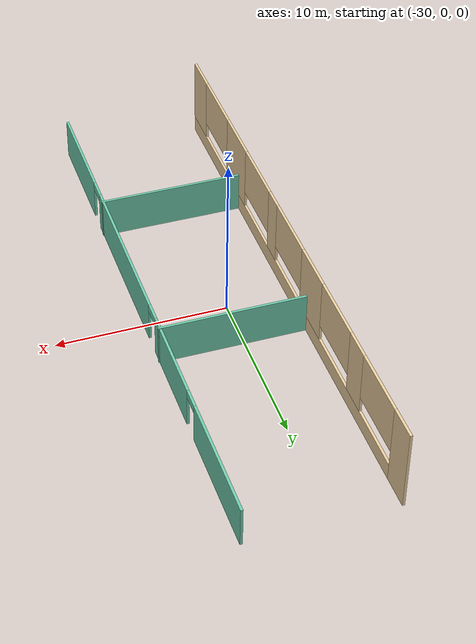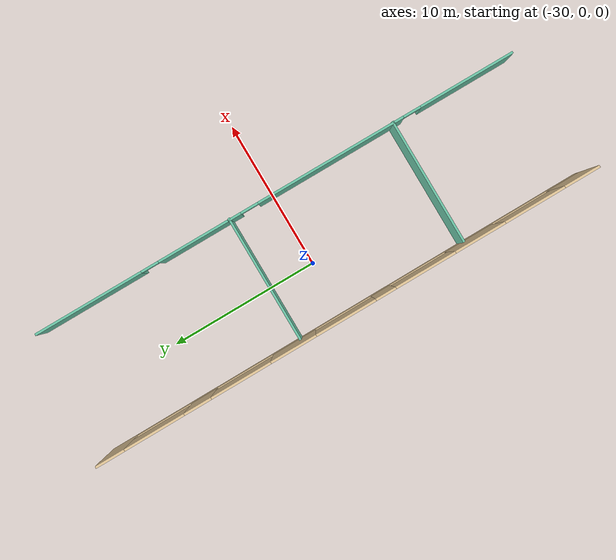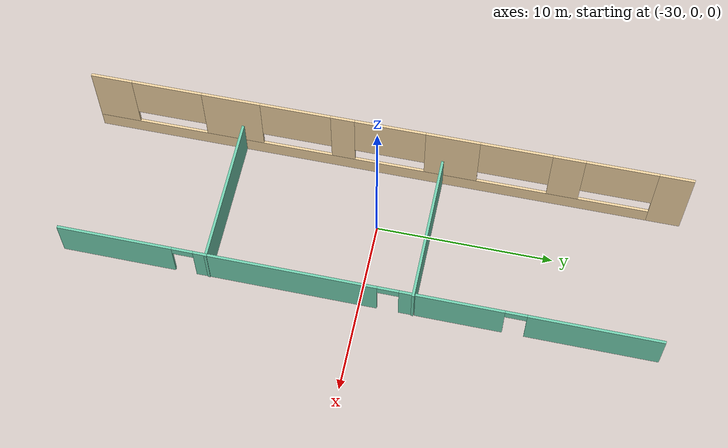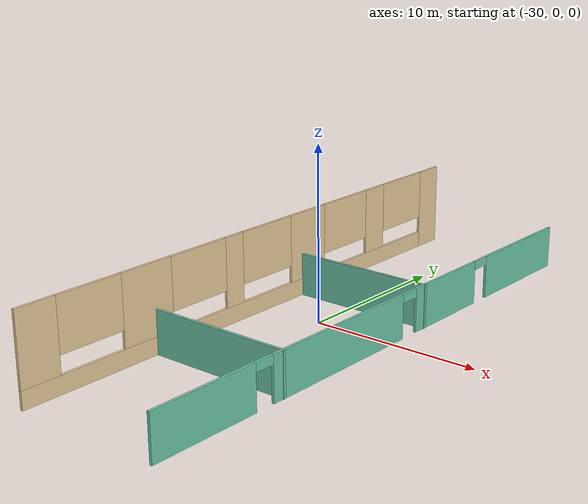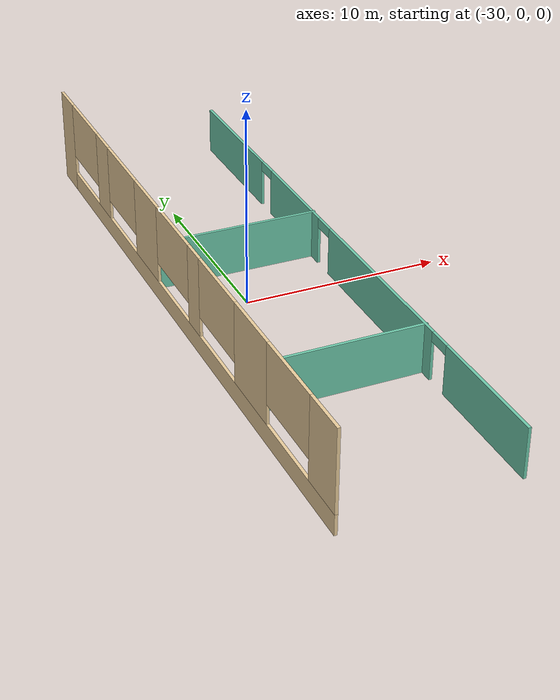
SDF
<sdf version="1.6">
 <model name="myWarehouse">
  <link name="Wall_31">
   <pose>-29.3992 2.99201 0 0 -0 0</pose>
   <visual name="Wall_31_Visual">
    <pose>0 0 1.25 0 -0 0</pose>
    <geometry><box><size>8.69036 0.15 2.5</size></box></geometry>
    <material>
     <script><uri>file://media/materials/scripts/gazebo.material</uri><name>Gazebo/Grey</name></script>
     <ambient>0.435294 0.796078 0.67451 1</ambient>
     <shader type="pixel"/>
     <diffuse>0.7 0.7 0.7 1</diffuse>
     <specular>0.01 0.01 0.01 1</specular>
     <emissive>0 0 0 1</emissive>
    </material>
    <meta><layer>0</layer></meta>
   </visual>
   <collision name="Wall_31_Collision">
    <pose>0 0 1.25 0 -0 0</pose>
    <geometry><box><size>8.69036 0.15 2.5</size></box></geometry>
    <surface>
     <friction>
      <ode><mu>1</mu><mu2>1</mu2><fdir1>0 0 0</fdir1><slip1>0</slip1><slip2>0</slip2></ode>
      <torsional>
       <coefficient>1</coefficient>
       <patch_radius>0</patch_radius>
       <surface_radius>0</surface_radius>
       <use_patch_radius>1</use_patch_radius>
       <ode><slip>0</slip></ode>
      </torsional>
     </friction>
     <bounce><restitution_coefficient>0</restitution_coefficient><threshold>1e+06</threshold></bounce>
     <contact>
      <collide_without_contact>0</collide_without_contact>
      <collide_without_contact_bitmask>1</collide_without_contact_bitmask>
      <collide_bitmask>1</collide_bitmask>
      <ode>
       <soft_cfm>0</soft_cfm>
       <soft_erp>0.2</soft_erp>
       <kp>1e+13</kp>
       <kd>1</kd>
       <max_vel>0.01</max_vel>
       <min_depth>0</min_depth>
      </ode>
      <bullet>
       <split_impulse>1</split_impulse>
       <split_impulse_penetration_threshold>-0.01</split_impulse_penetration_threshold>
       <soft_cfm>0</soft_cfm>
       <soft_erp>0.2</soft_erp>
       <kp>1e+13</kp>
       <kd>1</kd>
      </bullet>
     </contact>
    </surface>
   </collision>
  </link>
  <link name="Wall_33">
   <pose>-33.6748 -0.181302 0 0 0 -1.56757</pose>
   <visual name="Wall_33_Visual_0">
    <pose>-15.936 0 2.5 0 -0 0</pose>
    <geometry><box><size>1.91581 0.15 5</size></box></geometry>
    <material>
     <script><uri>file://media/materials/scripts/gazebo.material</uri><name>Gazebo/Grey</name></script>
     <ambient>0.921569 0.807843 0.615686 1</ambient>
     <shader type="pixel"/>
     <diffuse>0.7 0.7 0.7 1</diffuse>
     <specular>0.01 0.01 0.01 1</specular>
     <emissive>0 0 0 1</emissive>
    </material>
    <meta><layer>0</layer></meta>
   </visual>
   <visual name="Wall_33_Visual_1">
    <pose>0.957904 0 0.5 0 -0 0</pose>
    <geometry><box><size>31.872 0.15 1</size></box></geometry>
    <material>
     <script><uri>file://media/materials/scripts/gazebo.material</uri><name>Gazebo/Grey</name></script>
     <ambient>0.921569 0.807843 0.615686 1</ambient>
     <shader type="pixel"/>
     <diffuse>0.7 0.7 0.7 1</diffuse>
     <specular>0.01 0.01 0.01 1</specular>
     <emissive>0 0 0 1</emissive>
    </material>
    <meta><layer>0</layer></meta>
   </visual>
   <visual name="Wall_33_Visual_2">
    <pose>-10.0753 0 3 0 -0 0</pose>
    <geometry><box><size>1.80567 0.15 4</size></box></geometry>
    <material>
     <script><uri>file://media/materials/scripts/gazebo.material</uri><name>Gazebo/Grey</name></script>
     <ambient>0.921569 0.807843 0.615686 1</ambient>
     <shader type="pixel"/>
     <diffuse>0.7 0.7 0.7 1</diffuse>
     <specular>0.01 0.01 0.01 1</specular>
     <emissive>0 0 0 1</emissive>
    </material>
    <meta><layer>0</layer></meta>
   </visual>
   <visual name="Wall_33_Visual_3">
    <pose>-3.654 0 3 0 -0 0</pose>
    <geometry><box><size>3.03683 0.15 4</size></box></geometry>
    <material>
     <script><uri>file://media/materials/scripts/gazebo.material</uri><name>Gazebo/Grey</name></script>
     <ambient>0.921569 0.807843 0.615686 1</ambient>
     <shader type="pixel"/>
     <diffuse>0.7 0.7 0.7 1</diffuse>
     <specular>0.01 0.01 0.01 1</specular>
     <emissive>0 0 0 1</emissive>
    </material>
    <meta><layer>0</layer></meta>
   </visual>
   <visual name="Wall_33_Visual_4">
    <pose>2.5391 0 3 0 -0 0</pose>
    <geometry><box><size>1.34936 0.15 4</size></box></geometry>
    <material>
     <script><uri>file://media/materials/scripts/gazebo.material</uri><name>Gazebo/Grey</name></script>
     <ambient>0.921569 0.807843 0.615686 1</ambient>
     <shader type="pixel"/>
     <diffuse>0.7 0.7 0.7 1</diffuse>
     <specular>0.01 0.01 0.01 1</specular>
     <emissive>0 0 0 1</emissive>
    </material>
    <meta><layer>0</layer></meta>
   </visual>
   <visual name="Wall_33_Visual_5">
    <pose>8.88554 0 3 0 -0 0</pose>
    <geometry><box><size>3.34353 0.15 4</size></box></geometry>
    <material>
     <script><uri>file://media/materials/scripts/gazebo.material</uri><name>Gazebo/Grey</name></script>
     <ambient>0.921569 0.807843 0.615686 1</ambient>
     <shader type="pixel"/>
     <diffuse>0.7 0.7 0.7 1</diffuse>
     <specular>0.01 0.01 0.01 1</specular>
     <emissive>0 0 0 1</emissive>
    </material>
    <meta><layer>0</layer></meta>
   </visual>
   <visual name="Wall_33_Visual_6">
    <pose>15.7256 0 3 0 -0 0</pose>
    <geometry><box><size>2.33659 0.15 4</size></box></geometry>
    <material>
     <script><uri>file://media/materials/scripts/gazebo.material</uri><name>Gazebo/Grey</name></script>
     <ambient>0.921569 0.807843 0.615686 1</ambient>
     <shader type="pixel"/>
     <diffuse>0.7 0.7 0.7 1</diffuse>
     <specular>0.01 0.01 0.01 1</specular>
     <emissive>0 0 0 1</emissive>
    </material>
    <meta><layer>0</layer></meta>
   </visual>
   <visual name="Wall_33_Visual_7">
    <pose>-12.9781 0 3.5 0 -0 0</pose>
    <geometry><box><size>4 0.15 3</size></box></geometry>
    <material>
     <script><uri>file://media/materials/scripts/gazebo.material</uri><name>Gazebo/Grey</name></script>
     <ambient>0.921569 0.807843 0.615686 1</ambient>
     <shader type="pixel"/>
     <diffuse>0.7 0.7 0.7 1</diffuse>
     <specular>0.01 0.01 0.01 1</specular>
     <emissive>0 0 0 1</emissive>
    </material>
    <meta><layer>0</layer></meta>
   </visual>
   <visual name="Wall_33_Visual_9">
    <pose>-0.135581 0 3.5 0 -0 0</pose>
    <geometry><box><size>4 0.15 3</size></box></geometry>
    <material>
     <script><uri>file://media/materials/scripts/gazebo.material</uri><name>Gazebo/Grey</name></script>
     <ambient>0.921569 0.807843 0.615686 1</ambient>
     <shader type="pixel"/>
     <diffuse>0.7 0.7 0.7 1</diffuse>
     <specular>0.01 0.01 0.01 1</specular>
     <emissive>0 0 0 1</emissive>
    </material>
    <meta><layer>0</layer></meta>
   </visual>
   <visual name="Wall_33_Visual_8">
    <pose>-7.17242 0 3.5 0 -0 0</pose>
    <geometry><box><size>4 0.15 3</size></box></geometry>
    <material>
     <script><uri>file://media/materials/scripts/gazebo.material</uri><name>Gazebo/Grey</name></script>
     <ambient>0.921569 0.807843 0.615686 1</ambient>
     <shader type="pixel"/>
     <diffuse>0.7 0.7 0.7 1</diffuse>
     <specular>0.01 0.01 0.01 1</specular>
     <emissive>0 0 0 1</emissive>
    </material>
    <meta><layer>0</layer></meta>
   </visual>
   <visual name="Wall_33_Visual_10">
    <pose>5.21378 0 3.5 0 -0 0</pose>
    <geometry><box><size>4 0.15 3</size></box></geometry>
    <material>
     <script><uri>file://media/materials/scripts/gazebo.material</uri><name>Gazebo/Grey</name></script>
     <ambient>0.921569 0.807843 0.615686 1</ambient>
     <shader type="pixel"/>
     <diffuse>0.7 0.7 0.7 1</diffuse>
     <specular>0.01 0.01 0.01 1</specular>
     <emissive>0 0 0 1</emissive>
    </material>
    <meta><layer>0</layer></meta>
   </visual>
   <visual name="Wall_33_Visual_11">
    <pose>12.5573 0 3.5 0 -0 0</pose>
    <geometry><box><size>4 0.15 3</size></box></geometry>
    <material>
     <script><uri>file://media/materials/scripts/gazebo.material</uri><name>Gazebo/Grey</name></script>
     <ambient>0.921569 0.807843 0.615686 1</ambient>
     <shader type="pixel"/>
     <diffuse>0.7 0.7 0.7 1</diffuse>
     <specular>0.01 0.01 0.01 1</specular>
     <emissive>0 0 0 1</emissive>
    </material>
    <meta><layer>0</layer></meta>
   </visual>
   <collision name="Wall_33_Collision_8">
    <pose>-7.17242 0 3.5 0 -0 0</pose>
    <geometry><box><size>4 0.15 3</size></box></geometry>
    <surface>
     <friction>
      <ode><mu>1</mu><mu2>1</mu2><fdir1>0 0 0</fdir1><slip1>0</slip1><slip2>0</slip2></ode>
      <torsional>
       <coefficient>1</coefficient>
       <patch_radius>0</patch_radius>
       <surface_radius>0</surface_radius>
       <use_patch_radius>1</use_patch_radius>
       <ode><slip>0</slip></ode>
      </torsional>
     </friction>
     <bounce><restitution_coefficient>0</restitution_coefficient><threshold>1e+06</threshold></bounce>
     <contact>
      <collide_without_contact>0</collide_without_contact>
      <collide_without_contact_bitmask>1</collide_without_contact_bitmask>
      <collide_bitmask>1</collide_bitmask>
      <ode>
       <soft_cfm>0</soft_cfm>
       <soft_erp>0.2</soft_erp>
       <kp>1e+13</kp>
       <kd>1</kd>
       <max_vel>0.01</max_vel>
       <min_depth>0</min_depth>
      </ode>
      <bullet>
       <split_impulse>1</split_impulse>
       <split_impulse_penetration_threshold>-0.01</split_impulse_penetration_threshold>
       <soft_cfm>0</soft_cfm>
       <soft_erp>0.2</soft_erp>
       <kp>1e+13</kp>
       <kd>1</kd>
      </bullet>
     </contact>
    </surface>
   </collision>
   <collision name="Wall_33_Collision_0">
    <pose>-15.936 0 2.5 0 -0 0</pose>
    <geometry><box><size>1.91581 0.15 5</size></box></geometry>
    <surface>
     <friction>
      <ode><mu>1</mu><mu2>1</mu2><fdir1>0 0 0</fdir1><slip1>0</slip1><slip2>0</slip2></ode>
      <torsional>
       <coefficient>1</coefficient>
       <patch_radius>0</patch_radius>
       <surface_radius>0</surface_radius>
       <use_patch_radius>1</use_patch_radius>
       <ode><slip>0</slip></ode>
      </torsional>
     </friction>
     <bounce><restitution_coefficient>0</restitution_coefficient><threshold>1e+06</threshold></bounce>
     <contact>
      <collide_without_contact>0</collide_without_contact>
      <collide_without_contact_bitmask>1</collide_without_contact_bitmask>
      <collide_bitmask>1</collide_bitmask>
      <ode>
       <soft_cfm>0</soft_cfm>
       <soft_erp>0.2</soft_erp>
       <kp>1e+13</kp>
       <kd>1</kd>
       <max_vel>0.01</max_vel>
       <min_depth>0</min_depth>
      </ode>
      <bullet>
       <split_impulse>1</split_impulse>
       <split_impulse_penetration_threshold>-0.01</split_impulse_penetration_threshold>
       <soft_cfm>0</soft_cfm>
       <soft_erp>0.2</soft_erp>
       <kp>1e+13</kp>
       <kd>1</kd>
      </bullet>
     </contact>
    </surface>
   </collision>
   <collision name="Wall_33_Collision_1">
    <pose>0.957904 0 0.5 0 -0 0</pose>
    <geometry><box><size>31.872 0.15 1</size></box></geometry>
    <surface>
     <friction>
      <ode><mu>1</mu><mu2>1</mu2><fdir1>0 0 0</fdir1><slip1>0</slip1><slip2>0</slip2></ode>
      <torsional>
       <coefficient>1</coefficient>
       <patch_radius>0</patch_radius>
       <surface_radius>0</surface_radius>
       <use_patch_radius>1</use_patch_radius>
       <ode><slip>0</slip></ode>
      </torsional>
     </friction>
     <bounce><restitution_coefficient>0</restitution_coefficient><threshold>1e+06</threshold></bounce>
     <contact>
      <collide_without_contact>0</collide_without_contact>
      <collide_without_contact_bitmask>1</collide_without_contact_bitmask>
      <collide_bitmask>1</collide_bitmask>
      <ode>
       <soft_cfm>0</soft_cfm>
       <soft_erp>0.2</soft_erp>
       <kp>1e+13</kp>
       <kd>1</kd>
       <max_vel>0.01</max_vel>
       <min_depth>0</min_depth>
      </ode>
      <bullet>
       <split_impulse>1</split_impulse>
       <split_impulse_penetration_threshold>-0.01</split_impulse_penetration_threshold>
       <soft_cfm>0</soft_cfm>
       <soft_erp>0.2</soft_erp>
       <kp>1e+13</kp>
       <kd>1</kd>
      </bullet>
     </contact>
    </surface>
   </collision>
   <collision name="Wall_33_Collision_2">
    <pose>-10.0753 0 3 0 -0 0</pose>
    <geometry><box><size>1.80567 0.15 4</size></box></geometry>
    <surface>
     <friction>
      <ode><mu>1</mu><mu2>1</mu2><fdir1>0 0 0</fdir1><slip1>0</slip1><slip2>0</slip2></ode>
      <torsional>
       <coefficient>1</coefficient>
       <patch_radius>0</patch_radius>
       <surface_radius>0</surface_radius>
       <use_patch_radius>1</use_patch_radius>
       <ode><slip>0</slip></ode>
      </torsional>
     </friction>
     <bounce><restitution_coefficient>0</restitution_coefficient><threshold>1e+06</threshold></bounce>
     <contact>
      <collide_without_contact>0</collide_without_contact>
      <collide_without_contact_bitmask>1</collide_without_contact_bitmask>
      <collide_bitmask>1</collide_bitmask>
      <ode>
       <soft_cfm>0</soft_cfm>
       <soft_erp>0.2</soft_erp>
       <kp>1e+13</kp>
       <kd>1</kd>
       <max_vel>0.01</max_vel>
       <min_depth>0</min_depth>
      </ode>
      <bullet>
       <split_impulse>1</split_impulse>
       <split_impulse_penetration_threshold>-0.01</split_impulse_penetration_threshold>
       <soft_cfm>0</soft_cfm>
       <soft_erp>0.2</soft_erp>
       <kp>1e+13</kp>
       <kd>1</kd>
      </bullet>
     </contact>
    </surface>
   </collision>
   <collision name="Wall_33_Collision_4">
    <pose>2.5391 0 3 0 -0 0</pose>
    <geometry><box><size>1.34936 0.15 4</size></box></geometry>
    <surface>
     <friction>
      <ode><mu>1</mu><mu2>1</mu2><fdir1>0 0 0</fdir1><slip1>0</slip1><slip2>0</slip2></ode>
      <torsional>
       <coefficient>1</coefficient>
       <patch_radius>0</patch_radius>
       <surface_radius>0</surface_radius>
       <use_patch_radius>1</use_patch_radius>
       <ode><slip>0</slip></ode>
      </torsional>
     </friction>
     <bounce><restitution_coefficient>0</restitution_coefficient><threshold>1e+06</threshold></bounce>
     <contact>
      <collide_without_contact>0</collide_without_contact>
      <collide_without_contact_bitmask>1</collide_without_contact_bitmask>
      <collide_bitmask>1</collide_bitmask>
      <ode>
       <soft_cfm>0</soft_cfm>
       <soft_erp>0.2</soft_erp>
       <kp>1e+13</kp>
       <kd>1</kd>
       <max_vel>0.01</max_vel>
       <min_depth>0</min_depth>
      </ode>
      <bullet>
       <split_impulse>1</split_impulse>
       <split_impulse_penetration_threshold>-0.01</split_impulse_penetration_threshold>
       <soft_cfm>0</soft_cfm>
       <soft_erp>0.2</soft_erp>
       <kp>1e+13</kp>
       <kd>1</kd>
      </bullet>
     </contact>
    </surface>
   </collision>
   <collision name="Wall_33_Collision_3">
    <pose>-3.654 0 3 0 -0 0</pose>
    <geometry><box><size>3.03683 0.15 4</size></box></geometry>
    <surface>
     <friction>
      <ode><mu>1</mu><mu2>1</mu2><fdir1>0 0 0</fdir1><slip1>0</slip1><slip2>0</slip2></ode>
      <torsional>
       <coefficient>1</coefficient>
       <patch_radius>0</patch_radius>
       <surface_radius>0</surface_radius>
       <use_patch_radius>1</use_patch_radius>
       <ode><slip>0</slip></ode>
      </torsional>
     </friction>
     <bounce><restitution_coefficient>0</restitution_coefficient><threshold>1e+06</threshold></bounce>
     <contact>
      <collide_without_contact>0</collide_without_contact>
      <collide_without_contact_bitmask>1</collide_without_contact_bitmask>
      <collide_bitmask>1</collide_bitmask>
      <ode>
       <soft_cfm>0</soft_cfm>
       <soft_erp>0.2</soft_erp>
       <kp>1e+13</kp>
       <kd>1</kd>
       <max_vel>0.01</max_vel>
       <min_depth>0</min_depth>
      </ode>
      <bullet>
       <split_impulse>1</split_impulse>
       <split_impulse_penetration_threshold>-0.01</split_impulse_penetration_threshold>
       <soft_cfm>0</soft_cfm>
       <soft_erp>0.2</soft_erp>
       <kp>1e+13</kp>
       <kd>1</kd>
      </bullet>
     </contact>
    </surface>
   </collision>
   <collision name="Wall_33_Collision_5">
    <pose>8.88554 0 3 0 -0 0</pose>
    <geometry><box><size>3.34353 0.15 4</size></box></geometry>
    <surface>
     <friction>
      <ode><mu>1</mu><mu2>1</mu2><fdir1>0 0 0</fdir1><slip1>0</slip1><slip2>0</slip2></ode>
      <torsional>
       <coefficient>1</coefficient>
       <patch_radius>0</patch_radius>
       <surface_radius>0</surface_radius>
       <use_patch_radius>1</use_patch_radius>
       <ode><slip>0</slip></ode>
      </torsional>
     </friction>
     <bounce><restitution_coefficient>0</restitution_coefficient><threshold>1e+06</threshold></bounce>
     <contact>
      <collide_without_contact>0</collide_without_contact>
      <collide_without_contact_bitmask>1</collide_without_contact_bitmask>
      <collide_bitmask>1</collide_bitmask>
      <ode>
       <soft_cfm>0</soft_cfm>
       <soft_erp>0.2</soft_erp>
       <kp>1e+13</kp>
       <kd>1</kd>
       <max_vel>0.01</max_vel>
       <min_depth>0</min_depth>
      </ode>
      <bullet>
       <split_impulse>1</split_impulse>
       <split_impulse_penetration_threshold>-0.01</split_impulse_penetration_threshold>
       <soft_cfm>0</soft_cfm>
       <soft_erp>0.2</soft_erp>
       <kp>1e+13</kp>
       <kd>1</kd>
      </bullet>
     </contact>
    </surface>
   </collision>
   <collision name="Wall_33_Collision_6">
    <pose>15.7256 0 3 0 -0 0</pose>
    <geometry><box><size>2.33659 0.15 4</size></box></geometry>
    <surface>
     <friction>
      <ode><mu>1</mu><mu2>1</mu2><fdir1>0 0 0</fdir1><slip1>0</slip1><slip2>0</slip2></ode>
      <torsional>
       <coefficient>1</coefficient>
       <patch_radius>0</patch_radius>
       <surface_radius>0</surface_radius>
       <use_patch_radius>1</use_patch_radius>
       <ode><slip>0</slip></ode>
      </torsional>
     </friction>
     <bounce><restitution_coefficient>0</restitution_coefficient><threshold>1e+06</threshold></bounce>
     <contact>
      <collide_without_contact>0</collide_without_contact>
      <collide_without_contact_bitmask>1</collide_without_contact_bitmask>
      <collide_bitmask>1</collide_bitmask>
      <ode>
       <soft_cfm>0</soft_cfm>
       <soft_erp>0.2</soft_erp>
       <kp>1e+13</kp>
       <kd>1</kd>
       <max_vel>0.01</max_vel>
       <min_depth>0</min_depth>
      </ode>
      <bullet>
       <split_impulse>1</split_impulse>
       <split_impulse_penetration_threshold>-0.01</split_impulse_penetration_threshold>
       <soft_cfm>0</soft_cfm>
       <soft_erp>0.2</soft_erp>
       <kp>1e+13</kp>
       <kd>1</kd>
      </bullet>
     </contact>
    </surface>
   </collision>
   <collision name="Wall_33_Collision_7">
    <pose>-12.9781 0 3.5 0 -0 0</pose>
    <geometry><box><size>4 0.15 3</size></box></geometry>
    <surface>
     <friction>
      <ode><mu>1</mu><mu2>1</mu2><fdir1>0 0 0</fdir1><slip1>0</slip1><slip2>0</slip2></ode>
      <torsional>
       <coefficient>1</coefficient>
       <patch_radius>0</patch_radius>
       <surface_radius>0</surface_radius>
       <use_patch_radius>1</use_patch_radius>
       <ode><slip>0</slip></ode>
      </torsional>
     </friction>
     <bounce><restitution_coefficient>0</restitution_coefficient><threshold>1e+06</threshold></bounce>
     <contact>
      <collide_without_contact>0</collide_without_contact>
      <collide_without_contact_bitmask>1</collide_without_contact_bitmask>
      <collide_bitmask>1</collide_bitmask>
      <ode>
       <soft_cfm>0</soft_cfm>
       <soft_erp>0.2</soft_erp>
       <kp>1e+13</kp>
       <kd>1</kd>
       <max_vel>0.01</max_vel>
       <min_depth>0</min_depth>
      </ode>
      <bullet>
       <split_impulse>1</split_impulse>
       <split_impulse_penetration_threshold>-0.01</split_impulse_penetration_threshold>
       <soft_cfm>0</soft_cfm>
       <soft_erp>0.2</soft_erp>
       <kp>1e+13</kp>
       <kd>1</kd>
      </bullet>
     </contact>
    </surface>
   </collision>
   <collision name="Wall_33_Collision_10">
    <pose>5.21378 0 3.5 0 -0 0</pose>
    <geometry><box><size>4 0.15 3</size></box></geometry>
    <surface>
     <friction>
      <ode><mu>1</mu><mu2>1</mu2><fdir1>0 0 0</fdir1><slip1>0</slip1><slip2>0</slip2></ode>
      <torsional>
       <coefficient>1</coefficient>
       <patch_radius>0</patch_radius>
       <surface_radius>0</surface_radius>
       <use_patch_radius>1</use_patch_radius>
       <ode><slip>0</slip></ode>
      </torsional>
     </friction>
     <bounce><restitution_coefficient>0</restitution_coefficient><threshold>1e+06</threshold></bounce>
     <contact>
      <collide_without_contact>0</collide_without_contact>
      <collide_without_contact_bitmask>1</collide_without_contact_bitmask>
      <collide_bitmask>1</collide_bitmask>
      <ode>
       <soft_cfm>0</soft_cfm>
       <soft_erp>0.2</soft_erp>
       <kp>1e+13</kp>
       <kd>1</kd>
       <max_vel>0.01</max_vel>
       <min_depth>0</min_depth>
      </ode>
      <bullet>
       <split_impulse>1</split_impulse>
       <split_impulse_penetration_threshold>-0.01</split_impulse_penetration_threshold>
       <soft_cfm>0</soft_cfm>
       <soft_erp>0.2</soft_erp>
       <kp>1e+13</kp>
       <kd>1</kd>
      </bullet>
     </contact>
    </surface>
   </collision>
   <collision name="Wall_33_Collision_9">
    <pose>-0.135581 0 3.5 0 -0 0</pose>
    <geometry><box><size>4 0.15 3</size></box></geometry>
    <surface>
     <friction>
      <ode><mu>1</mu><mu2>1</mu2><fdir1>0 0 0</fdir1><slip1>0</slip1><slip2>0</slip2></ode>
      <torsional>
       <coefficient>1</coefficient>
       <patch_radius>0</patch_radius>
       <surface_radius>0</surface_radius>
       <use_patch_radius>1</use_patch_radius>
       <ode><slip>0</slip></ode>
      </torsional>
     </friction>
     <bounce><restitution_coefficient>0</restitution_coefficient><threshold>1e+06</threshold></bounce>
     <contact>
      <collide_without_contact>0</collide_without_contact>
      <collide_without_contact_bitmask>1</collide_without_contact_bitmask>
      <collide_bitmask>1</collide_bitmask>
      <ode>
       <soft_cfm>0</soft_cfm>
       <soft_erp>0.2</soft_erp>
       <kp>1e+13</kp>
       <kd>1</kd>
       <max_vel>0.01</max_vel>
       <min_depth>0</min_depth>
      </ode>
      <bullet>
       <split_impulse>1</split_impulse>
       <split_impulse_penetration_threshold>-0.01</split_impulse_penetration_threshold>
       <soft_cfm>0</soft_cfm>
       <soft_erp>0.2</soft_erp>
       <kp>1e+13</kp>
       <kd>1</kd>
      </bullet>
     </contact>
    </surface>
   </collision>
   <collision name="Wall_33_Collision_11">
    <pose>12.5573 0 3.5 0 -0 0</pose>
    <geometry><box><size>4 0.15 3</size></box></geometry>
    <surface>
     <friction>
      <ode><mu>1</mu><mu2>1</mu2><fdir1>0 0 0</fdir1><slip1>0</slip1><slip2>0</slip2></ode>
      <torsional>
       <coefficient>1</coefficient>
       <patch_radius>0</patch_radius>
       <surface_radius>0</surface_radius>
       <use_patch_radius>1</use_patch_radius>
       <ode><slip>0</slip></ode>
      </torsional>
     </friction>
     <bounce><restitution_coefficient>0</restitution_coefficient><threshold>1e+06</threshold></bounce>
     <contact>
      <collide_without_contact>0</collide_without_contact>
      <collide_without_contact_bitmask>1</collide_without_contact_bitmask>
      <collide_bitmask>1</collide_bitmask>
      <ode>
       <soft_cfm>0</soft_cfm>
       <soft_erp>0.2</soft_erp>
       <kp>1e+13</kp>
       <kd>1</kd>
       <max_vel>0.01</max_vel>
       <min_depth>0</min_depth>
      </ode>
      <bullet>
       <split_impulse>1</split_impulse>
       <split_impulse_penetration_threshold>-0.01</split_impulse_penetration_threshold>
       <soft_cfm>0</soft_cfm>
       <soft_erp>0.2</soft_erp>
       <kp>1e+13</kp>
       <kd>1</kd>
      </bullet>
     </contact>
    </surface>
   </collision>
  </link>
  <link name="Wall_39">
   <pose>-25.1766 -6.93299 0 0 0 -1.5708</pose>
   <visual name="Wall_39_Visual_0">
    <pose>-9.56706 0 1.25 0 -0 0</pose>
    <geometry><box><size>0.865872 0.15 2.5</size></box></geometry>
    <material>
     <script><uri>file://media/materials/scripts/gazebo.material</uri><name>Gazebo/Grey</name></script>
     <ambient>0.435294 0.796078 0.67451 1</ambient>
     <shader type="pixel"/>
     <diffuse>0.7 0.7 0.7 1</diffuse>
     <specular>0.01 0.01 0.01 1</specular>
     <emissive>0 0 0 1</emissive>
    </material>
    <meta><layer>0</layer></meta>
   </visual>
   <visual name="Wall_39_Visual_1">
    <pose>-2.81446 0 1.25 0 -0 0</pose>
    <geometry><box><size>10.2393 0.15 2.5</size></box></geometry>
    <material>
     <script><uri>file://media/materials/scripts/gazebo.material</uri><name>Gazebo/Grey</name></script>
     <ambient>0.435294 0.796078 0.67451 1</ambient>
     <shader type="pixel"/>
     <diffuse>0.7 0.7 0.7 1</diffuse>
     <specular>0.01 0.01 0.01 1</specular>
     <emissive>0 0 0 1</emissive>
    </material>
    <meta><layer>0</layer></meta>
   </visual>
   <visual name="Wall_39_Visual_2">
    <pose>6.7526 0 1.25 0 -0 0</pose>
    <geometry><box><size>6.49479 0.15 2.5</size></box></geometry>
    <material>
     <script><uri>file://media/materials/scripts/gazebo.material</uri><name>Gazebo/Grey</name></script>
     <ambient>0.435294 0.796078 0.67451 1</ambient>
     <shader type="pixel"/>
     <diffuse>0.7 0.7 0.7 1</diffuse>
     <specular>0.01 0.01 0.01 1</specular>
     <emissive>0 0 0 1</emissive>
    </material>
    <meta><layer>0</layer></meta>
   </visual>
   <visual name="Wall_39_Visual_3">
    <pose>-8.53413 0 2.25 0 -0 0</pose>
    <geometry><box><size>1.2 0.15 0.5</size></box></geometry>
    <material>
     <script><uri>file://media/materials/scripts/gazebo.material</uri><name>Gazebo/Grey</name></script>
     <ambient>0.435294 0.796078 0.67451 1</ambient>
     <shader type="pixel"/>
     <diffuse>0.7 0.7 0.7 1</diffuse>
     <specular>0.01 0.01 0.01 1</specular>
     <emissive>0 0 0 1</emissive>
    </material>
    <meta><layer>0</layer></meta>
   </visual>
   <visual name="Wall_39_Visual_4">
    <pose>2.90521 0 2.25 0 -0 0</pose>
    <geometry><box><size>1.2 0.15 0.5</size></box></geometry>
    <material>
     <script><uri>file://media/materials/scripts/gazebo.material</uri><name>Gazebo/Grey</name></script>
     <ambient>0.435294 0.796078 0.67451 1</ambient>
     <shader type="pixel"/>
     <diffuse>0.7 0.7 0.7 1</diffuse>
     <specular>0.01 0.01 0.01 1</specular>
     <emissive>0 0 0 1</emissive>
    </material>
    <meta><layer>0</layer></meta>
   </visual>
   <collision name="Wall_39_Collision_0">
    <pose>-9.56706 0 1.25 0 -0 0</pose>
    <geometry><box><size>0.865872 0.15 2.5</size></box></geometry>
    <surface>
     <friction>
      <ode><mu>1</mu><mu2>1</mu2><fdir1>0 0 0</fdir1><slip1>0</slip1><slip2>0</slip2></ode>
      <torsional>
       <coefficient>1</coefficient>
       <patch_radius>0</patch_radius>
       <surface_radius>0</surface_radius>
       <use_patch_radius>1</use_patch_radius>
       <ode><slip>0</slip></ode>
      </torsional>
     </friction>
     <bounce><restitution_coefficient>0</restitution_coefficient><threshold>1e+06</threshold></bounce>
     <contact>
      <collide_without_contact>0</collide_without_contact>
      <collide_without_contact_bitmask>1</collide_without_contact_bitmask>
      <collide_bitmask>1</collide_bitmask>
      <ode>
       <soft_cfm>0</soft_cfm>
       <soft_erp>0.2</soft_erp>
       <kp>1e+13</kp>
       <kd>1</kd>
       <max_vel>0.01</max_vel>
       <min_depth>0</min_depth>
      </ode>
      <bullet>
       <split_impulse>1</split_impulse>
       <split_impulse_penetration_threshold>-0.01</split_impulse_penetration_threshold>
       <soft_cfm>0</soft_cfm>
       <soft_erp>0.2</soft_erp>
       <kp>1e+13</kp>
       <kd>1</kd>
      </bullet>
     </contact>
    </surface>
   </collision>
   <collision name="Wall_39_Collision_1">
    <pose>-2.81446 0 1.25 0 -0 0</pose>
    <geometry><box><size>10.2393 0.15 2.5</size></box></geometry>
    <surface>
     <friction>
      <ode><mu>1</mu><mu2>1</mu2><fdir1>0 0 0</fdir1><slip1>0</slip1><slip2>0</slip2></ode>
      <torsional>
       <coefficient>1</coefficient>
       <patch_radius>0</patch_radius>
       <surface_radius>0</surface_radius>
       <use_patch_radius>1</use_patch_radius>
       <ode><slip>0</slip></ode>
      </torsional>
     </friction>
     <bounce><restitution_coefficient>0</restitution_coefficient><threshold>1e+06</threshold></bounce>
     <contact>
      <collide_without_contact>0</collide_without_contact>
      <collide_without_contact_bitmask>1</collide_without_contact_bitmask>
      <collide_bitmask>1</collide_bitmask>
      <ode>
       <soft_cfm>0</soft_cfm>
       <soft_erp>0.2</soft_erp>
       <kp>1e+13</kp>
       <kd>1</kd>
       <max_vel>0.01</max_vel>
       <min_depth>0</min_depth>
      </ode>
      <bullet>
       <split_impulse>1</split_impulse>
       <split_impulse_penetration_threshold>-0.01</split_impulse_penetration_threshold>
       <soft_cfm>0</soft_cfm>
       <soft_erp>0.2</soft_erp>
       <kp>1e+13</kp>
       <kd>1</kd>
      </bullet>
     </contact>
    </surface>
   </collision>
   <collision name="Wall_39_Collision_2">
    <pose>6.7526 0 1.25 0 -0 0</pose>
    <geometry><box><size>6.49479 0.15 2.5</size></box></geometry>
    <surface>
     <friction>
      <ode><mu>1</mu><mu2>1</mu2><fdir1>0 0 0</fdir1><slip1>0</slip1><slip2>0</slip2></ode>
      <torsional>
       <coefficient>1</coefficient>
       <patch_radius>0</patch_radius>
       <surface_radius>0</surface_radius>
       <use_patch_radius>1</use_patch_radius>
       <ode><slip>0</slip></ode>
      </torsional>
     </friction>
     <bounce><restitution_coefficient>0</restitution_coefficient><threshold>1e+06</threshold></bounce>
     <contact>
      <collide_without_contact>0</collide_without_contact>
      <collide_without_contact_bitmask>1</collide_without_contact_bitmask>
      <collide_bitmask>1</collide_bitmask>
      <ode>
       <soft_cfm>0</soft_cfm>
       <soft_erp>0.2</soft_erp>
       <kp>1e+13</kp>
       <kd>1</kd>
       <max_vel>0.01</max_vel>
       <min_depth>0</min_depth>
      </ode>
      <bullet>
       <split_impulse>1</split_impulse>
       <split_impulse_penetration_threshold>-0.01</split_impulse_penetration_threshold>
       <soft_cfm>0</soft_cfm>
       <soft_erp>0.2</soft_erp>
       <kp>1e+13</kp>
       <kd>1</kd>
      </bullet>
     </contact>
    </surface>
   </collision>
   <collision name="Wall_39_Collision_3">
    <pose>-8.53413 0 2.25 0 -0 0</pose>
    <geometry><box><size>1.2 0.15 0.5</size></box></geometry>
    <surface>
     <friction>
      <ode><mu>1</mu><mu2>1</mu2><fdir1>0 0 0</fdir1><slip1>0</slip1><slip2>0</slip2></ode>
      <torsional>
       <coefficient>1</coefficient>
       <patch_radius>0</patch_radius>
       <surface_radius>0</surface_radius>
       <use_patch_radius>1</use_patch_radius>
       <ode><slip>0</slip></ode>
      </torsional>
     </friction>
     <bounce><restitution_coefficient>0</restitution_coefficient><threshold>1e+06</threshold></bounce>
     <contact>
      <collide_without_contact>0</collide_without_contact>
      <collide_without_contact_bitmask>1</collide_without_contact_bitmask>
      <collide_bitmask>1</collide_bitmask>
      <ode>
       <soft_cfm>0</soft_cfm>
       <soft_erp>0.2</soft_erp>
       <kp>1e+13</kp>
       <kd>1</kd>
       <max_vel>0.01</max_vel>
       <min_depth>0</min_depth>
      </ode>
      <bullet>
       <split_impulse>1</split_impulse>
       <split_impulse_penetration_threshold>-0.01</split_impulse_penetration_threshold>
       <soft_cfm>0</soft_cfm>
       <soft_erp>0.2</soft_erp>
       <kp>1e+13</kp>
       <kd>1</kd>
      </bullet>
     </contact>
    </surface>
   </collision>
   <collision name="Wall_39_Collision_4">
    <pose>2.90521 0 2.25 0 -0 0</pose>
    <geometry><box><size>1.2 0.15 0.5</size></box></geometry>
    <surface>
     <friction>
      <ode><mu>1</mu><mu2>1</mu2><fdir1>0 0 0</fdir1><slip1>0</slip1><slip2>0</slip2></ode>
      <torsional>
       <coefficient>1</coefficient>
       <patch_radius>0</patch_radius>
       <surface_radius>0</surface_radius>
       <use_patch_radius>1</use_patch_radius>
       <ode><slip>0</slip></ode>
      </torsional>
     </friction>
     <bounce><restitution_coefficient>0</restitution_coefficient><threshold>1e+06</threshold></bounce>
     <contact>
      <collide_without_contact>0</collide_without_contact>
      <collide_without_contact_bitmask>1</collide_without_contact_bitmask>
      <collide_bitmask>1</collide_bitmask>
      <ode>
       <soft_cfm>0</soft_cfm>
       <soft_erp>0.2</soft_erp>
       <kp>1e+13</kp>
       <kd>1</kd>
       <max_vel>0.01</max_vel>
       <min_depth>0</min_depth>
      </ode>
      <bullet>
       <split_impulse>1</split_impulse>
       <split_impulse_penetration_threshold>-0.01</split_impulse_penetration_threshold>
       <soft_cfm>0</soft_cfm>
       <soft_erp>0.2</soft_erp>
       <kp>1e+13</kp>
       <kd>1</kd>
      </bullet>
     </contact>
    </surface>
   </collision>
  </link>
  <link name="Wall_54">
   <pose>-29.3153 -8.52144 0 0 -0 3.14159</pose>
   <visual name="Wall_54_Visual">
    <pose>0 0 1.25 0 -0 0</pose>
    <geometry><box><size>8.5 0.15 2.5</size></box></geometry>
    <material>
     <script><uri>file://media/materials/scripts/gazebo.material</uri><name>Gazebo/Grey</name></script>
     <ambient>0.435294 0.796078 0.67451 1</ambient>
     <shader type="pixel"/>
     <diffuse>0.7 0.7 0.7 1</diffuse>
     <specular>0.01 0.01 0.01 1</specular>
     <emissive>0 0 0 1</emissive>
    </material>
    <meta><layer>0</layer></meta>
   </visual>
   <collision name="Wall_54_Collision">
    <pose>0 0 1.25 0 -0 0</pose>
    <geometry><box><size>8.5 0.15 2.5</size></box></geometry>
    <surface>
     <friction>
      <ode><mu>1</mu><mu2>1</mu2><fdir1>0 0 0</fdir1><slip1>0</slip1><slip2>0</slip2></ode>
      <torsional>
       <coefficient>1</coefficient>
       <patch_radius>0</patch_radius>
       <surface_radius>0</surface_radius>
       <use_patch_radius>1</use_patch_radius>
       <ode><slip>0</slip></ode>
      </torsional>
     </friction>
     <bounce><restitution_coefficient>0</restitution_coefficient><threshold>1e+06</threshold></bounce>
     <contact>
      <collide_without_contact>0</collide_without_contact>
      <collide_without_contact_bitmask>1</collide_without_contact_bitmask>
      <collide_bitmask>1</collide_bitmask>
      <ode>
       <soft_cfm>0</soft_cfm>
       <soft_erp>0.2</soft_erp>
       <kp>1e+13</kp>
       <kd>1</kd>
       <max_vel>0.01</max_vel>
       <min_depth>0</min_depth>
      </ode>
      <bullet>
       <split_impulse>1</split_impulse>
       <split_impulse_penetration_threshold>-0.01</split_impulse_penetration_threshold>
       <soft_cfm>0</soft_cfm>
       <soft_erp>0.2</soft_erp>
       <kp>1e+13</kp>
       <kd>1</kd>
      </bullet>
     </contact>
    </surface>
   </collision>
  </link>
  <link name="Wall_8">
   <pose>-25.1721 9.85512 0 0 0 -1.5708</pose>
   <visual name="Wall_8_Visual_0">
    <pose>-3.04193 0 1.25 0 -0 0</pose>
    <geometry><box><size>7.41614 0.15 2.5</size></box></geometry>
    <material>
     <script><uri>file://media/materials/scripts/gazebo.material</uri><name>Gazebo/Grey</name></script>
     <ambient>0.435294 0.796078 0.67451 1</ambient>
     <shader type="pixel"/>
     <diffuse>0.7 0.7 0.7 1</diffuse>
     <specular>0.01 0.01 0.01 1</specular>
     <emissive>0 0 0 1</emissive>
    </material>
    <meta><layer>0</layer></meta>
   </visual>
   <visual name="Wall_8_Visual_1">
    <pose>4.30807 0 1.25 0 -0 0</pose>
    <geometry><box><size>4.88386 0.15 2.5</size></box></geometry>
    <material>
     <script><uri>file://media/materials/scripts/gazebo.material</uri><name>Gazebo/Grey</name></script>
     <ambient>0.435294 0.796078 0.67451 1</ambient>
     <shader type="pixel"/>
     <diffuse>0.7 0.7 0.7 1</diffuse>
     <specular>0.01 0.01 0.01 1</specular>
     <emissive>0 0 0 1</emissive>
    </material>
    <meta><layer>0</layer></meta>
   </visual>
   <visual name="Wall_8_Visual_2">
    <pose>1.26614 0 2.25 0 -0 0</pose>
    <geometry><box><size>1.2 0.15 0.5</size></box></geometry>
    <material>
     <script><uri>file://media/materials/scripts/gazebo.material</uri><name>Gazebo/Grey</name></script>
     <ambient>0.435294 0.796078 0.67451 1</ambient>
     <shader type="pixel"/>
     <diffuse>0.7 0.7 0.7 1</diffuse>
     <specular>0.01 0.01 0.01 1</specular>
     <emissive>0 0 0 1</emissive>
    </material>
    <meta><layer>0</layer></meta>
   </visual>
   <collision name="Wall_8_Collision_0">
    <pose>-3.04193 0 1.25 0 -0 0</pose>
    <geometry><box><size>7.41614 0.15 2.5</size></box></geometry>
    <surface>
     <friction>
      <ode><mu>1</mu><mu2>1</mu2><fdir1>0 0 0</fdir1><slip1>0</slip1><slip2>0</slip2></ode>
      <torsional>
       <coefficient>1</coefficient>
       <patch_radius>0</patch_radius>
       <surface_radius>0</surface_radius>
       <use_patch_radius>1</use_patch_radius>
       <ode><slip>0</slip></ode>
      </torsional>
     </friction>
     <bounce><restitution_coefficient>0</restitution_coefficient><threshold>1e+06</threshold></bounce>
     <contact>
      <collide_without_contact>0</collide_without_contact>
      <collide_without_contact_bitmask>1</collide_without_contact_bitmask>
      <collide_bitmask>1</collide_bitmask>
      <ode>
       <soft_cfm>0</soft_cfm>
       <soft_erp>0.2</soft_erp>
       <kp>1e+13</kp>
       <kd>1</kd>
       <max_vel>0.01</max_vel>
       <min_depth>0</min_depth>
      </ode>
      <bullet>
       <split_impulse>1</split_impulse>
       <split_impulse_penetration_threshold>-0.01</split_impulse_penetration_threshold>
       <soft_cfm>0</soft_cfm>
       <soft_erp>0.2</soft_erp>
       <kp>1e+13</kp>
       <kd>1</kd>
      </bullet>
     </contact>
    </surface>
   </collision>
   <collision name="Wall_8_Collision_1">
    <pose>4.30807 0 1.25 0 -0 0</pose>
    <geometry><box><size>4.88386 0.15 2.5</size></box></geometry>
    <surface>
     <friction>
      <ode><mu>1</mu><mu2>1</mu2><fdir1>0 0 0</fdir1><slip1>0</slip1><slip2>0</slip2></ode>
      <torsional>
       <coefficient>1</coefficient>
       <patch_radius>0</patch_radius>
       <surface_radius>0</surface_radius>
       <use_patch_radius>1</use_patch_radius>
       <ode><slip>0</slip></ode>
      </torsional>
     </friction>
     <bounce><restitution_coefficient>0</restitution_coefficient><threshold>1e+06</threshold></bounce>
     <contact>
      <collide_without_contact>0</collide_without_contact>
      <collide_without_contact_bitmask>1</collide_without_contact_bitmask>
      <collide_bitmask>1</collide_bitmask>
      <ode>
       <soft_cfm>0</soft_cfm>
       <soft_erp>0.2</soft_erp>
       <kp>1e+13</kp>
       <kd>1</kd>
       <max_vel>0.01</max_vel>
       <min_depth>0</min_depth>
      </ode>
      <bullet>
       <split_impulse>1</split_impulse>
       <split_impulse_penetration_threshold>-0.01</split_impulse_penetration_threshold>
       <soft_cfm>0</soft_cfm>
       <soft_erp>0.2</soft_erp>
       <kp>1e+13</kp>
       <kd>1</kd>
      </bullet>
     </contact>
    </surface>
   </collision>
   <collision name="Wall_8_Collision_2">
    <pose>1.26614 0 2.25 0 -0 0</pose>
    <geometry><box><size>1.2 0.15 0.5</size></box></geometry>
    <surface>
     <friction>
      <ode><mu>1</mu><mu2>1</mu2><fdir1>0 0 0</fdir1><slip1>0</slip1><slip2>0</slip2></ode>
      <torsional>
       <coefficient>1</coefficient>
       <patch_radius>0</patch_radius>
       <surface_radius>0</surface_radius>
       <use_patch_radius>1</use_patch_radius>
       <ode><slip>0</slip></ode>
      </torsional>
     </friction>
     <bounce><restitution_coefficient>0</restitution_coefficient><threshold>1e+06</threshold></bounce>
     <contact>
      <collide_without_contact>0</collide_without_contact>
      <collide_without_contact_bitmask>1</collide_without_contact_bitmask>
      <collide_bitmask>1</collide_bitmask>
      <ode>
       <soft_cfm>0</soft_cfm>
       <soft_erp>0.2</soft_erp>
       <kp>1e+13</kp>
       <kd>1</kd>
       <max_vel>0.01</max_vel>
       <min_depth>0</min_depth>
      </ode>
      <bullet>
       <split_impulse>1</split_impulse>
       <split_impulse_penetration_threshold>-0.01</split_impulse_penetration_threshold>
       <soft_cfm>0</soft_cfm>
       <soft_erp>0.2</soft_erp>
       <kp>1e+13</kp>
       <kd>1</kd>
      </bullet>
     </contact>
    </surface>
   </collision>
  </link>
  <static>1</static>
 </model>
</sdf>
